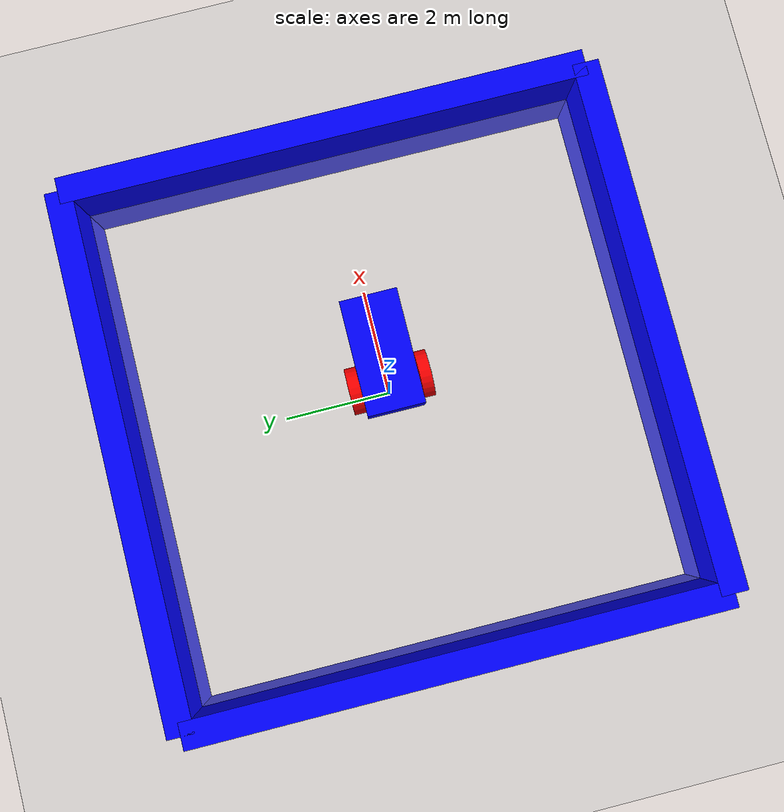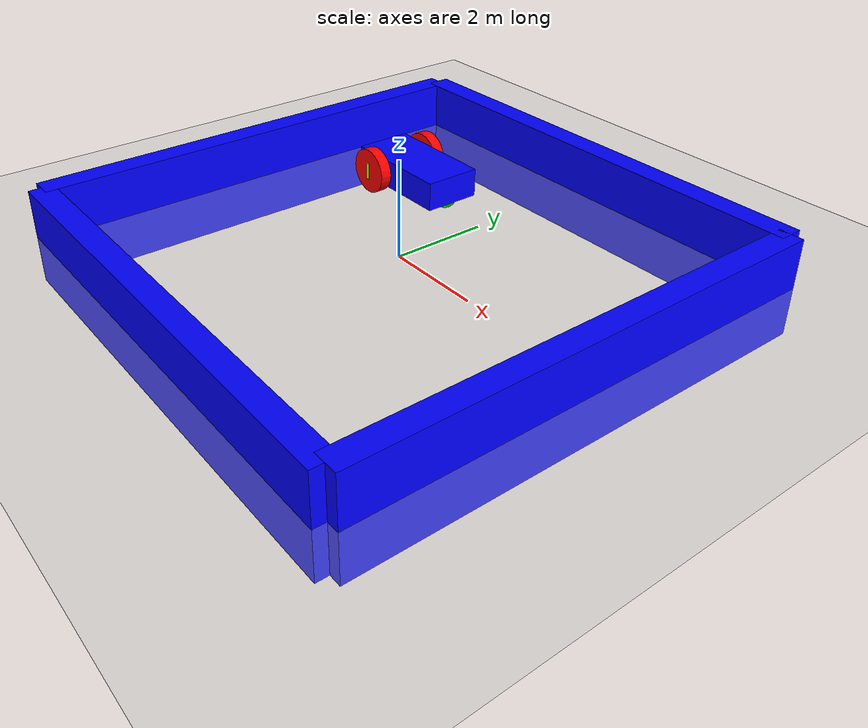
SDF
<?xml version="1.0" ?>
<sdf version="1.10">
    <world name="car_world">
        <plugin filename="gz-sim-imu-system"
                name="gz::sim::systems::Imu">
        </plugin>
        <plugin filename="gz-sim-contact-system"
                name="gz::sim::systems::Contact">
        </plugin>
        <plugin
            filename="gz-sim-sensors-system"
            name="gz::sim::systems::Sensors">
            <render_engine>ogre2</render_engine>
        </plugin>
        <physics name="1ms" type="ignored">
            <max_step_size>0.001</max_step_size>
            <real_time_factor>1.0</real_time_factor>
        </physics>
        <plugin
            filename="gz-sim-physics-system"
            name="gz::sim::systems::Physics">
        </plugin>
        <plugin
            filename="gz-sim-user-commands-system"
            name="gz::sim::systems::UserCommands">
        </plugin>
        <plugin
            filename="gz-sim-scene-broadcaster-system"
            name="gz::sim::systems::SceneBroadcaster">
        </plugin>

        <light type="directional" name="sun">
            <cast_shadows>true</cast_shadows>
            <pose>0 0 10 0 0 0</pose>
            <diffuse>0.8 0.8 0.8 1</diffuse>
            <specular>0.2 0.2 0.2 1</specular>
            <attenuation>
                <range>1000</range>
                <constant>0.9</constant>
                <linear>0.01</linear>
                <quadratic>0.001</quadratic>
            </attenuation>
            <direction>-0.5 0.1 -0.9</direction>
        </light>

        <model name="ground_plane">
            <static>true</static>
            <link name="link">
                <collision name="collision">
                <geometry>
                    <plane>
                    <normal>0 0 1</normal>
                    </plane>
                </geometry>
                </collision>
                <visual name="visual">
                <geometry>
                    <plane>
                    <normal>0 0 1</normal>
                    <size>100 100</size>
                    </plane>
                </geometry>
                <material>
                    <ambient>0.8 0.8 0.8 1</ambient>
                    <diffuse>0.8 0.8 0.8 1</diffuse>
                    <specular>0.8 0.8 0.8 1</specular>
                </material>
                </visual>
            </link>
        </model>

         <!-- Eigenes Fahrzeug -->
        <include>
            <uri>model://vehicle_blue</uri>
            <pose>0 0 1 0 0 0</pose>
        </include>

        <!-- Walls -->
        <include>
            <uri>model://wall</uri>
            <name>wall1</name>
            <pose>5 0 0 0 0 1.5708</pose>
        </include>
        <include>
            <uri>model://wall</uri>
            <name>wall2</name>
            <pose>-5 0 0 0 0 1.5708</pose>
        </include>
        <include>
            <uri>model://wall</uri>
            <name>wall3</name>
            <pose>0 5 0 0 0 0</pose>
        </include>
        <include>
            <uri>model://wall</uri>
            <name>wall4</name>
            <pose>0 -5 0 0 0 0</pose>
        </include>

    </world>
</sdf>

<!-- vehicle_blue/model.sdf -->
<sdf version="1.9">
    <model name='vehicle_blue' canonical_link='chassis'>

        <frame name="lidar_frame" attached_to='chassis'>
            <pose>0.8 0 0.5 0 0 0</pose>
        </frame>
        <link name='chassis'>
            <pose relative_to='__model__'>0.5 0 1 0 0 0</pose>
            <sensor name='gpu_lidar' type='gpu_lidar'>"
                <pose relative_to='lidar_frame'>0 0 0 0 0 0</pose>
                <topic>lidar</topic>
                <update_rate>10</update_rate>
                <ray>
                    <scan>
                        <horizontal>
                            <samples>640</samples>
                            <resolution>1</resolution>
                            <min_angle>-1.396263</min_angle>
                            <max_angle>1.396263</max_angle>
                        </horizontal>
                        <vertical>
                            <samples>1</samples>
                            <resolution>0.01</resolution>
                            <min_angle>0</min_angle>
                            <max_angle>0</max_angle>
                        </vertical>
                    </scan>
                    <range>
                        <min>0.08</min>
                        <max>10.0</max>
                        <resolution>0.01</resolution>
                    </range>
                </ray>
                <always_on>1</always_on>
                <visualize>true</visualize>
            </sensor>

            <sensor name="imu_sensor" type="imu">
                <always_on>1</always_on>
                <update_rate>1</update_rate>
                <visualize>true</visualize>
                <topic>imu</topic>
            </sensor>
            <inertial> <!--inertial properties of the link mass, inertia matix-->
                <mass>1.14395</mass>
                <inertia>
                    <ixx>0.095329</ixx>
                    <ixy>0</ixy>
                    <ixz>0</ixz>
                    <iyy>0.381317</iyy>
                    <iyz>0</iyz>
                    <izz>0.476646</izz>
                </inertia>
            </inertial>

            <visual name='visual'>
                <geometry>
                    <box>
                        <size>2.0 1.0 0.5</size>
                    </box>
                </geometry>
                <!--let's add color to our link-->
                <material>
                    <ambient>0.0 0.0 1.0 1</ambient>
                    <diffuse>0.0 0.0 1.0 1</diffuse>
                    <specular>0.0 0.0 1.0 1</specular>
                </material>
            </visual>
            <collision name='collision'>
                <geometry>
                    <box>
                        <size>2.0 1.0 0.5</size>
                    </box>
                </geometry>
            </collision>
        </link>

        <link name='left_wheel'>
            <pose relative_to="chassis">-0.5 0.6 0 -1.5707 0 0</pose>
            <inertial>
                <mass>1</mass>
                <inertia>
                    <ixx>0.043333</ixx>
                    <ixy>0</ixy>
                    <ixz>0</ixz>
                    <iyy>0.043333</iyy>
                    <iyz>0</iyz>
                    <izz>0.08</izz>
                </inertia>
            </inertial>
            <visual name='visual'>
                <geometry>
                    <cylinder>
                        <radius>0.4</radius>
                        <length>0.2</length>
                    </cylinder>
                </geometry>
                <material>
                    <ambient>1.0 0.0 0.0 1</ambient>
                    <diffuse>1.0 0.0 0.0 1</diffuse>
                    <specular>1.0 0.0 0.0 1</specular>
                </material>
            </visual>
            <visual name="rotation_marker">
                <!-- Marker etwas außerhalb der Radflaeche -->
                <pose>0 0 -0.01 0 0 0</pose>

                <geometry>
                    <box>
                        <size>0.05 0.30 0.22</size>
                    </box>
                </geometry>

                <material>
                    <ambient>1 1 0 1</ambient>
                    <diffuse>1 1 0 1</diffuse>
                </material>
            </visual>
            <collision name='collision'>
                <geometry>
                    <cylinder>
                        <radius>0.4</radius>
                        <length>0.2</length>
                    </cylinder>
                </geometry>
            </collision>
        </link>

        <!--The same as left wheel but with different position-->
        <link name='right_wheel'>
            <pose relative_to="chassis">-0.5 -0.6 0 -1.5707 0 0</pose> <!--angles are in radian-->
            <inertial>
                <mass>1</mass>
                <inertia>
                    <ixx>0.043333</ixx>
                    <ixy>0</ixy>
                    <ixz>0</ixz>
                    <iyy>0.043333</iyy>
                    <iyz>0</iyz>
                    <izz>0.08</izz>
                </inertia>
            </inertial>
            <visual name='visual'>
                <geometry>
                    <cylinder>
                        <radius>0.4</radius>
                        <length>0.2</length>
                    </cylinder>
                </geometry>
                <material>
                    <ambient>1.0 0.0 0.0 1</ambient>
                    <diffuse>1.0 0.0 0.0 1</diffuse>
                    <specular>1.0 0.0 0.0 1</specular>
                </material>
            </visual>
            <visual name="rotation_marker">
                <!-- Marker etwas außerhalb der Radfläche -->
                <pose>0 0 -0.01 0 0 0</pose>

                <geometry>
                    <box>
                        <size>0.05 0.30 0.22</size>
                    </box>
                </geometry>

                <material>
                    <ambient>1 1 0 1</ambient>
                    <diffuse>1 1 0 1</diffuse>
                </material>
            </visual>
            <collision name='collision'>
                <geometry>
                    <cylinder>
                        <radius>0.4</radius>
                        <length>0.2</length>
                    </cylinder>
                </geometry>
            </collision>
        </link>

        <frame name="caster_frame" attached_to='chassis'>
            <pose>0.8 0 -0.2 0 0 0</pose>
        </frame>

        <!--caster wheel-->
        <link name='caster'>
            <pose relative_to='caster_frame'/>
            <inertial>
                <mass>1</mass>
                <inertia>
                    <ixx>0.016</ixx>
                    <ixy>0</ixy>
                    <ixz>0</ixz>
                    <iyy>0.016</iyy>
                    <iyz>0</iyz>
                    <izz>0.016</izz>
                </inertia>
            </inertial>
            <visual name='visual'>
                <geometry>
                    <sphere>
                        <radius>0.2</radius>
                    </sphere>
                </geometry>
                <material>
                    <ambient>0.0 1 0.0 1</ambient>
                    <diffuse>0.0 1 0.0 1</diffuse>
                    <specular>0.0 1 0.0 1</specular>
                </material>
            </visual>
            <collision name='collision'>
                <geometry>
                    <sphere>
                        <radius>0.2</radius>
                    </sphere>
                </geometry>
            </collision>
        </link>

        <joint name='left_wheel_joint' type='revolute'>
            <pose relative_to='left_wheel'/>
            <parent>chassis</parent>
            <child>left_wheel</child>
            <axis>
                <xyz expressed_in='__model__'>0 1 0</xyz> <!--can be defined as any frame or even arbitrary frames-->
                <limit>
                    <lower>-1.79769e+308</lower>    <!--negative infinity-->
                    <upper>1.79769e+308</upper>     <!--positive infinity-->
                </limit>
            </axis>
        </joint>

        <joint name='right_wheel_joint' type='revolute'>
            <pose relative_to='right_wheel'/>
            <parent>chassis</parent>
            <child>right_wheel</child>
            <axis>
                <xyz expressed_in='__model__'>0 1 0</xyz>
                <limit>
                    <lower>-1.79769e+308</lower>    <!--negative infinity-->
                    <upper>1.79769e+308</upper>     <!--positive infinity-->
                </limit>
            </axis>
        </joint>

        <joint name='caster_wheel' type='ball'>
            <parent>chassis</parent>
            <child>caster</child>
        </joint>

        <plugin
            filename="gz-sim-diff-drive-system"
            name="gz::sim::systems::DiffDrive">
            <left_joint>left_wheel_joint</left_joint>
            <right_joint>right_wheel_joint</right_joint>
            <wheel_separation>1.2</wheel_separation>
            <wheel_radius>0.4</wheel_radius>
            <odom_publish_frequency>1</odom_publish_frequency>
            <topic>cmd_vel</topic>
        </plugin>
    </model>

</sdf>

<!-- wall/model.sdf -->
<sdf version="1.9">
<model name="wall">
            <static>true</static>
            <link name='box'>
                <visual name='visual'>
                    <geometry>
                        <box>
                            <size>10.0 0.5 2.0</size>
                        </box>
                    </geometry>
                    <!--let's add color to our link-->
                    <material>
                        <ambient>0.0 0.0 1.0 1</ambient>
                        <diffuse>0.0 0.0 1.0 1</diffuse>
                        <specular>0.0 0.0 1.0 1</specular>
                    </material>
                </visual>
                <collision name='collision'>
                    <geometry>
                        <box>
                            <size>10.0 0.5 2.0</size>
                        </box>
                    </geometry>
                </collision>
                <sensor name='sensor_contact' type='contact'>
                    <contact>
                        <collision>collision</collision>
                    </contact>
                </sensor>
            </link>

        </model>
</sdf>
